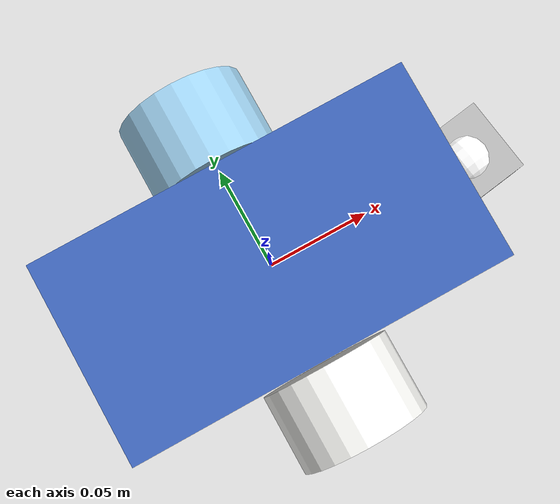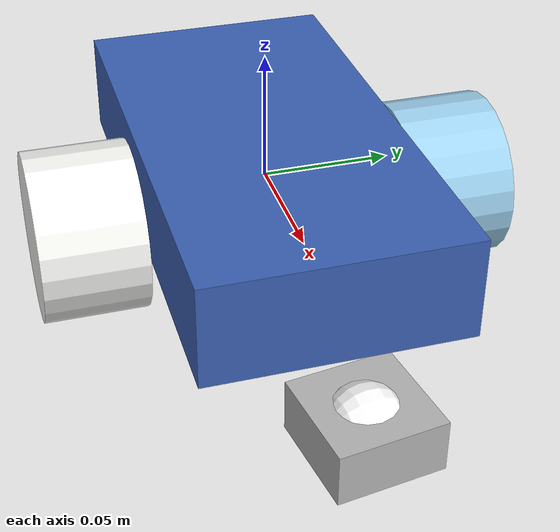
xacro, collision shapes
<?xml version="1.0"?>
<robot name="bot" xmlns:xacro="http://www.ros.org/wiki/xacro">

  <!-- Base robot generated by onshape-to-robot -->
  <xacro:include filename="$(find bot_description)/urdf/bot.urdf"/>

  <!-- Gazebo friction, materials and diff drive plugin -->
  <xacro:include filename="$(find bot_description)/urdf/gazebo.xacro"/>

</robot>

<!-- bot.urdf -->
<!-- Generated using onshape-to-robot -->
<!-- Onshape https://cad.onshape.com/documents/292c33a7f0f854a3cdb21f44/w/3cfe75fb330dfc627e8355b6/e/a29efea0b989aa0e985d95df -->
<robot name="bot">
  <!-- Link chassis -->
  <link name="base_link"/>
  <joint name="base_joint" type="fixed">
    <parent link="base_link"/>
    <child link="chassis"/>
  </joint>
<link name="chassis">
    <inertial>
      <origin xyz="0.0129417 0.000124462 -0.00104202" rpy="0 0 0"/>
      <mass value="0.339243"/>
      <inertia ixx="0.00034847" ixy="1.51262e-07" ixz="9.45548e-05" iyy="0.00106249" iyz="-4.20985e-07" izz="0.0013292"/>
    </inertial>
    <!-- Part spacer -->
    <visual>
      <origin xyz="0.136796 -0.0357567 -0.00100069" rpy="0 -0 0"/>
      <geometry>
        <mesh filename="package://bot_description/meshes/spacer.stl"/>
      </geometry>
      <material name="spacer_material">
        <color rgba="0.231373 0.380392 0.705882 1"/>
      </material>
    </visual>
    <!-- Part mpu6050 -->
    <visual>
      <origin xyz="0.0979786 0.033993 0.0089771" rpy="0 -0 -3.14159"/>
      <geometry>
        <mesh filename="package://bot_description/meshes/mpu6050.stl"/>
      </geometry>
      <material name="mpu6050_material">
        <color rgba="0.921569 0.921569 0.921569 1"/>
      </material>
    </visual>
    <!-- Part tt_motor_3777_v10 -->
    <visual>
      <origin xyz="-0.00036815 0.0387736 -0.0135492" rpy="3.14159 1.5708 0"/>
      <geometry>
        <mesh filename="package://bot_description/meshes/tt_motor_3777_v10.stl"/>
      </geometry>
      <material name="tt_motor_3777_v10_material">
        <color rgba="1 0.976471 0.521569 1"/>
      </material>
    </visual>
    <!-- Part spacer_2 -->
    <visual>
      <origin xyz="0.136796 -0.00575673 -0.00100069" rpy="0 -0 0"/>
      <geometry>
        <mesh filename="package://bot_description/meshes/spacer.stl"/>
      </geometry>
      <material name="spacer_2_material">
        <color rgba="0.231373 0.380392 0.705882 1"/>
      </material>
    </visual>
    <!-- Part tt_motor_3777_v10_2 -->
    <visual>
      <origin xyz="-0.00036815 -0.0388264 -0.0135492" rpy="0 -1.5708 0"/>
      <geometry>
        <mesh filename="package://bot_description/meshes/tt_motor_3777_v10__2.stl"/>
      </geometry>
      <material name="tt_motor_3777_v10_2_material">
        <color rgba="1 0.976471 0.521569 1"/>
      </material>
    </visual>
    <!-- Part tt_motor_3777_v10_3 -->
    <visual>
      <origin xyz="-0.00036815 0.0387736 -0.0135492" rpy="3.14159 1.5708 0"/>
      <geometry>
        <mesh filename="package://bot_description/meshes/tt_motor_3777_v10__3.stl"/>
      </geometry>
      <material name="tt_motor_3777_v10_3_material">
        <color rgba="0.960784 0.960784 0.964706 1"/>
      </material>
    </visual>
    <!-- Part tt_motor_3777_v10_4 -->
    <visual>
      <origin xyz="-0.00036815 0.0387736 -0.0135492" rpy="3.14159 1.5708 0"/>
      <geometry>
        <mesh filename="package://bot_description/meshes/tt_motor_3777_v10__4.stl"/>
      </geometry>
      <material name="tt_motor_3777_v10_4_material">
        <color rgba="0.960784 0.960784 0.964706 1"/>
      </material>
    </visual>
    <!-- Part chassis -->
    <visual>
      <origin xyz="-9.4875e-08 -2.63931e-05 0.000999305" rpy="0 -0 0"/>
      <geometry>
        <mesh filename="package://bot_description/meshes/chassis.stl"/>
      </geometry>
      <material name="chassis_material">
        <color rgba="0.615686 0.811765 0.929412 1"/>
      </material>
    </visual>
    <collision>
      <origin xyz="-9.4875e-08 -2.63931e-05 0.000999305" rpy="0 0 0"/>
      <geometry>
        <box size="0.19 0.10 0.04"/>
      </geometry>
    </collision>
    <!-- Part motor_holders -->
    <visual>
      <origin xyz="0.0429817 0.0500736 -0.0416742" rpy="-0 0 0"/>
      <geometry>
        <mesh filename="package://bot_description/meshes/motor_holders.stl"/>
      </geometry>
      <material name="motor_holders_material">
        <color rgba="0.647059 0.647059 0.647059 1"/>
      </material>
    </visual>
    <!-- Part tt_motor_3777_v10_5 -->
    <visual>
      <origin xyz="-0.00036815 -0.0388264 -0.0135492" rpy="0 -1.5708 0"/>
      <geometry>
        <mesh filename="package://bot_description/meshes/tt_motor_3777_v10__4.stl"/>
      </geometry>
      <material name="tt_motor_3777_v10_5_material">
        <color rgba="0.960784 0.960784 0.964706 1"/>
      </material>
    </visual>
    <!-- Part motor_holders_2 -->
    <visual>
      <origin xyz="0.0429817 -0.0275264 -0.0416742" rpy="0 -0 0"/>
      <geometry>
        <mesh filename="package://bot_description/meshes/motor_holders.stl"/>
      </geometry>
      <material name="motor_holders_2_material">
        <color rgba="0.647059 0.647059 0.647059 1"/>
      </material>
    </visual>
    <!-- Part motor_holders_3 -->
    <visual>
      <origin xyz="0.0429817 0.0294736 -0.0416742" rpy="0 -0 0"/>
      <geometry>
        <mesh filename="package://bot_description/meshes/motor_holders.stl"/>
      </geometry>
      <material name="motor_holders_3_material">
        <color rgba="0.647059 0.647059 0.647059 1"/>
      </material>
    </visual>
    <!-- Part tt_motor_3777_v10_6 -->
    <visual>
      <origin xyz="-0.00036815 -0.0388264 -0.0135492" rpy="0 -1.5708 0"/>
      <geometry>
        <mesh filename="package://bot_description/meshes/tt_motor_3777_v10__5.stl"/>
      </geometry>
      <material name="tt_motor_3777_v10_6_material">
        <color rgba="0.627451 0.627451 0.627451 1"/>
      </material>
    </visual>
    <!-- Part tt_motor_3777_v10_7 -->
    <visual>
      <origin xyz="-0.00036815 -0.0388264 -0.0135492" rpy="0 -1.5708 0"/>
      <geometry>
        <mesh filename="package://bot_description/meshes/tt_motor_3777_v10__3.stl"/>
      </geometry>
      <material name="tt_motor_3777_v10_7_material">
        <color rgba="0.960784 0.960784 0.964706 1"/>
      </material>
    </visual>
    <!-- Part tt_motor_3777_v10_8 -->
    <visual>
      <origin xyz="-0.00036815 0.0387736 -0.0135492" rpy="3.14159 1.5708 0"/>
      <geometry>
        <mesh filename="package://bot_description/meshes/tt_motor_3777_v10__2.stl"/>
      </geometry>
      <material name="tt_motor_3777_v10_8_material">
        <color rgba="1 0.976471 0.521569 1"/>
      </material>
    </visual>
    <!-- Part caster_40mm_swivel_plate_01 -->
    <visual>
      <origin xyz="0.0812499 -2.63931e-05 -0.0322507" rpy="0 -0 -1.5708"/>
      <geometry>
        <mesh filename="package://bot_description/meshes/caster_40mm_swivel_plate_01.stl"/>
      </geometry>
      <material name="caster_40mm_swivel_plate_01_material">
        <color rgba="0.705882 0.705882 0.705882 1"/>
      </material>
    </visual>
    <!-- Part tt_motor_3777_v10_9 -->
    <visual>
      <origin xyz="-0.00036815 0.0387736 -0.0135492" rpy="3.14159 1.5708 0"/>
      <geometry>
        <mesh filename="package://bot_description/meshes/tt_motor_3777_v10__6.stl"/>
      </geometry>
      <material name="tt_motor_3777_v10_9_material">
        <color rgba="0.0980392 0.0980392 0.0980392 1"/>
      </material>
    </visual>
    <!-- Part motor_holders_4 -->
    <visual>
      <origin xyz="0.0429817 -0.0481264 -0.0416742" rpy="-0 -0 0"/>
      <geometry>
        <mesh filename="package://bot_description/meshes/motor_holders.stl"/>
      </geometry>
      <material name="motor_holders_4_material">
        <color rgba="0.647059 0.647059 0.647059 1"/>
      </material>
    </visual>
    <!-- Part tt_motor_3777_v10_10 -->
    <visual>
      <origin xyz="-0.00036815 0.0387736 -0.0135492" rpy="3.14159 1.5708 0"/>
      <geometry>
        <mesh filename="package://bot_description/meshes/tt_motor_3777_v10__7.stl"/>
      </geometry>
      <material name="tt_motor_3777_v10_10_material">
        <color rgba="0.627451 0.627451 0.627451 1"/>
      </material>
    </visual>
    <!-- Part tt_motor_3777_v10_11 -->
    <visual>
      <origin xyz="-0.00036815 0.0387736 -0.0135492" rpy="3.14159 1.5708 0"/>
      <geometry>
        <mesh filename="package://bot_description/meshes/tt_motor_3777_v10__5.stl"/>
      </geometry>
      <material name="tt_motor_3777_v10_11_material">
        <color rgba="0.627451 0.627451 0.627451 1"/>
      </material>
    </visual>
    <!-- Part spacer_3 -->
    <visual>
      <origin xyz="0.112796 -0.0357567 -0.00100069" rpy="0 -0 0"/>
      <geometry>
        <mesh filename="package://bot_description/meshes/spacer.stl"/>
      </geometry>
      <material name="spacer_3_material">
        <color rgba="0.231373 0.380392 0.705882 1"/>
      </material>
    </visual>
    <!-- Part tt_motor_3777_v10_12 -->
    <visual>
      <origin xyz="-0.00036815 -0.0388264 -0.0135492" rpy="0 -1.5708 0"/>
      <geometry>
        <mesh filename="package://bot_description/meshes/tt_motor_3777_v10.stl"/>
      </geometry>
      <material name="tt_motor_3777_v10_12_material">
        <color rgba="1 0.976471 0.521569 1"/>
      </material>
    </visual>
    <!-- Part tt_motor_3777_v10_13 -->
    <visual>
      <origin xyz="-0.00036815 -0.0388264 -0.0135492" rpy="0 -1.5708 0"/>
      <geometry>
        <mesh filename="package://bot_description/meshes/tt_motor_3777_v10__7.stl"/>
      </geometry>
      <material name="tt_motor_3777_v10_13_material">
        <color rgba="0.627451 0.627451 0.627451 1"/>
      </material>
    </visual>
    <!-- Part tt_motor_3777_v10_14 -->
    <visual>
      <origin xyz="-0.00036815 -0.0388264 -0.0135492" rpy="0 -1.5708 0"/>
      <geometry>
        <mesh filename="package://bot_description/meshes/tt_motor_3777_v10__6.stl"/>
      </geometry>
      <material name="tt_motor_3777_v10_14_material">
        <color rgba="0.0980392 0.0980392 0.0980392 1"/>
      </material>
    </visual>
    <!-- Part spacer_4 -->
    <visual>
      <origin xyz="0.112796 -0.00575673 -0.00100069" rpy="0 -0 0"/>
      <geometry>
        <mesh filename="package://bot_description/meshes/spacer.stl"/>
      </geometry>
      <material name="spacer_4_material">
        <color rgba="0.231373 0.380392 0.705882 1"/>
      </material>
    </visual>
    <!-- Part main_half_size_board -->
    <visual>
      <origin xyz="0.11075 0.0356236 0.000999305" rpy="1.5708 0 -1.5708"/>
      <geometry>
        <mesh filename="package://bot_description/meshes/main_half_size_board.stl"/>
      </geometry>
      <material name="main_half_size_board_material">
        <color rgba="1 1 1 1"/>
      </material>
    </visual>
    <!-- Part half_size_side_rail -->
    <visual>
      <origin xyz="0.0282799 -0.0432849 0.000635827" rpy="0 0 0"/>
      <geometry>
        <mesh filename="package://bot_description/meshes/half_size_side_rail.stl"/>
      </geometry>
      <material name="half_size_side_rail_material">
        <color rgba="1 1 1 1"/>
      </material>
    </visual>
    <!-- Part half_size_side_rail_2 -->
    <visual>
      <origin xyz="0.0282499 0.0356236 0.000999305" rpy="0 0 0"/>
      <geometry>
        <mesh filename="package://bot_description/meshes/half_size_side_rail.stl"/>
      </geometry>
      <material name="half_size_side_rail_2_material">
        <color rgba="1 1 1 1"/>
      </material>
    </visual>
    <!-- Part main_half_size_board_2 -->
    <visual>
      <origin xyz="0.110804 0.000622607 0.000989475" rpy="1.5708 0 -1.5708"/>
      <geometry>
        <mesh filename="package://bot_description/meshes/main_half_size_board.stl"/>
      </geometry>
      <material name="main_half_size_board_2_material">
        <color rgba="1 1 1 1"/>
      </material>
    </visual>
    <!-- Part remache_v1_0 -->
    <visual>
      <origin xyz="-0.0441788 -0.0360268 0.0110493" rpy="-0.6866 -0 1.5708"/>
      <geometry>
        <mesh filename="package://bot_description/meshes/remache_v1_0.stl"/>
      </geometry>
      <material name="remache_v1_0_material">
        <color rgba="0.8 0.666667 0.321569 1"/>
      </material>
    </visual>
    <!-- Part remache_v1_0_2 -->
    <visual>
      <origin xyz="-0.0640288 -0.0360268 0.0110493" rpy="-0.6866 -0 1.5708"/>
      <geometry>
        <mesh filename="package://bot_description/meshes/remache_v1_0.stl"/>
      </geometry>
      <material name="remache_v1_0_2_material">
        <color rgba="0.8 0.666667 0.321569 1"/>
      </material>
    </visual>
    <!-- Part contacto_plano_v1_0 -->
    <visual>
      <origin xyz="-0.0441788 -0.0360768 0.0110493" rpy="1.5708 -0.567108 -3.14159"/>
      <geometry>
        <mesh filename="package://bot_description/meshes/contacto_plano_v1_0.stl"/>
      </geometry>
      <material name="contacto_plano_v1_0_material">
        <color rgba="0.741176 0.776471 0.8 1"/>
      </material>
    </visual>
    <!-- Part porta_baterias_2x18650 -->
    <visual>
      <origin xyz="-0.0541038 2.31881e-05 0.000599305" rpy="0 -0 -1.5708"/>
      <geometry>
        <mesh filename="package://bot_description/meshes/porta_baterias_2x18650.stl"/>
      </geometry>
      <material name="porta_baterias_2x18650_material">
        <color rgba="0.2 0.2 0.2 1"/>
      </material>
    </visual>
    <!-- Part contacto_helice_v2_0 -->
    <visual>
      <origin xyz="-0.0640288 -0.0357268 0.0110493" rpy="-1.5708 -0.391796 0"/>
      <geometry>
        <mesh filename="package://bot_description/meshes/contacto_helice_v2_0.stl"/>
      </geometry>
      <material name="contacto_helice_v2_0_material">
        <color rgba="0.741176 0.776471 0.8 1"/>
      </material>
    </visual>
    <!-- Part contacto_plano_v1_0_2 -->
    <visual>
      <origin xyz="-0.0640288 0.0361232 0.0110493" rpy="-1.5708 -0.611892 -3.14159"/>
      <geometry>
        <mesh filename="package://bot_description/meshes/contacto_plano_v1_0.stl"/>
      </geometry>
      <material name="contacto_plano_v1_0_2_material">
        <color rgba="0.741176 0.776471 0.8 1"/>
      </material>
    </visual>
    <!-- Part bateria_18650 -->
    <visual>
      <origin xyz="-0.0640288 -0.0301768 0.0110493" rpy="-1.5708 0.448272 -0"/>
      <geometry>
        <mesh filename="package://bot_description/meshes/bateria_18650.stl"/>
      </geometry>
      <material name="bateria_18650_material">
        <color rgba="0.392157 0.6 0.392157 1"/>
      </material>
    </visual>
    <!-- Part remache_v1_0_3 -->
    <visual>
      <origin xyz="-0.0640288 0.0360732 0.0110493" rpy="-0.6866 0 1.5708"/>
      <geometry>
        <mesh filename="package://bot_description/meshes/remache_v1_0.stl"/>
      </geometry>
      <material name="remache_v1_0_3_material">
        <color rgba="0.8 0.666667 0.321569 1"/>
      </material>
    </visual>
    <!-- Part bateria_18650_2 -->
    <visual>
      <origin xyz="-0.0441788 0.0302232 0.0110493" rpy="-1.5708 -1.11651 -3.14159"/>
      <geometry>
        <mesh filename="package://bot_description/meshes/bateria_18650.stl"/>
      </geometry>
      <material name="bateria_18650_2_material">
        <color rgba="0.392157 0.6 0.392157 1"/>
      </material>
    </visual>
    <!-- Part contacto_helice_v2_0_2 -->
    <visual>
      <origin xyz="-0.0441788 0.0357732 0.0110493" rpy="1.5708 1.5708 0"/>
      <geometry>
        <mesh filename="package://bot_description/meshes/contacto_helice_v2_0.stl"/>
      </geometry>
      <material name="contacto_helice_v2_0_2_material">
        <color rgba="0.741176 0.776471 0.8 1"/>
      </material>
    </visual>
    <!-- Part remache_v1_0_4 -->
    <visual>
      <origin xyz="-0.0441788 0.0360732 0.0110493" rpy="-0.6866 -0 1.5708"/>
      <geometry>
        <mesh filename="package://bot_description/meshes/remache_v1_0.stl"/>
      </geometry>
      <material name="remache_v1_0_4_material">
        <color rgba="0.8 0.666667 0.321569 1"/>
      </material>
    </visual>
  </link>
  <!-- Frame imu_link (dummy link + fixed joint) -->
  <link name="imu_link">
    <origin xyz="0 0 0" rpy="0 -0 0"/>
    <inertial>
      <origin xyz="0 0 0" rpy="0 0 0"/>
      <mass value="1e-9"/>
      <inertia ixx="0" ixy="0" ixz="0" iyy="0" iyz="0" izz="0"/>
    </inertial>
  </link>
  <joint name="imu_link_frame" type="fixed">
    <origin xyz="0.0979786 0.033993 0.0089771" rpy="0 -0 0"/>
    <parent link="chassis"/>
    <child link="imu_link"/>
    <axis xyz="0 0 0"/>
  </joint>
  <!-- Link wheel -->
  <link name="wheel">
    <inertial>
      <origin xyz="0.000233615 -1.15321e-07 -0.0320156" rpy="0 0 0"/>
      <mass value="0.0449149"/>
      <inertia ixx="2.33428e-05" ixy="-7.5e-11" ixz="2.4132e-08" iyy="2.3342e-05" iyz="-4.4e-11" izz="3.25125e-05"/>
    </inertial>
    <!-- Part tt_motor_3777_v10_15 -->
    <visual>
      <origin xyz="0 -0 0" rpy="1.5708 -0 0"/>
      <geometry>
        <mesh filename="package://bot_description/meshes/tt_motor_3777_v10__8.stl"/>
      </geometry>
      <material name="tt_motor_3777_v10_15_material">
        <color rgba="0.964706 0.964706 0.952941 1"/>
      </material>
    </visual>
    <!-- Part wheel -->
    <visual>
      <origin xyz="0.00025 -0 -0.0484" rpy="1.5708 0 -1.5708"/>
      <geometry>
        <mesh filename="package://bot_description/meshes/wheel.stl"/>
      </geometry>
      <material name="wheel_material">
        <color rgba="0.615686 0.811765 0.929412 1"/>
      </material>
    </visual>
    <collision>
      <origin xyz="0.00025 -0 -0.0334" rpy="0 0 1.5708"/>
      <geometry>
        <cylinder radius="0.033" length="0.04"/>
      </geometry>
    </collision>
  </link>
  <!-- Joint from chassis to wheel -->
  <joint name="right_wheel" type="continuous">
    <origin xyz="-0.00036815 -0.0387764 -0.0135492" rpy="1.5708 -0.995712 -3.14159"/>
    <parent link="chassis"/>
    <child link="wheel"/>
    <axis xyz="0 0 1"/>
    <limit effort="10" velocity="10"/>
  </joint>
  <!-- Link wheel_2 -->
  <link name="wheel_2">
    <inertial>
      <origin xyz="-0.000233615 -1.15321e-07 0.0320156" rpy="0 0 0"/>
      <mass value="0.0449149"/>
      <inertia ixx="2.33428e-05" ixy="7.5e-11" ixz="2.4132e-08" iyy="2.3342e-05" iyz="4.4e-11" izz="3.25125e-05"/>
    </inertial>
    <!-- Part wheel_2 -->
    <visual>
      <origin xyz="-0.00025 -0 0.0484" rpy="-1.5708 -0 -1.5708"/>
      <geometry>
        <mesh filename="package://bot_description/meshes/wheel.stl"/>
      </geometry>
      <material name="wheel_2_material">
        <color rgba="0.615686 0.811765 0.929412 1"/>
      </material>
    </visual>
    <collision>
      <origin xyz="-0.00025 -0 0.0334" rpy="0 0 1.5708"/>
      <geometry>
        <cylinder radius="0.033" length="0.04"/>
      </geometry>
    </collision>
    <!-- Part tt_motor_3777_v10_16 -->
    <visual>
      <origin xyz="0 0 0" rpy="1.5708 -0 0"/>
      <geometry>
        <mesh filename="package://bot_description/meshes/tt_motor_3777_v10__8.stl"/>
      </geometry>
      <material name="tt_motor_3777_v10_16_material">
        <color rgba="0.964706 0.964706 0.952941 1"/>
      </material>
    </visual>
  </link>
  <!-- Joint from chassis to wheel_2 -->
  <joint name="left_wheel" type="continuous">
    <origin xyz="-0.00036815 0.0387236 -0.0135492" rpy="-1.5708 0 0"/>
    <parent link="chassis"/>
    <child link="wheel_2"/>
    <axis xyz="0 0 1"/>
    <limit effort="10" velocity="10"/>
  </joint>
  <!-- Link caster_40mm_wheel_support_01 -->
  <link name="caster_40mm_wheel_support_01">
    <inertial>
      <origin xyz="-0.000469757 -0.00666336 -0.0085057" rpy="0 0 0"/>
      <mass value="0.0177347"/>
      <inertia ixx="2.35477e-06" ixy="-7.3611e-08" ixz="-9.5747e-08" iyy="2.30168e-06" iyz="-7.22818e-07" izz="2.54646e-06"/>
    </inertial>
    <!-- Part caster_40mm_wheel_support_01 -->
    <visual>
      <origin xyz="-0 -0.0155 -0.02" rpy="-0 -0 0"/>
      <geometry>
        <mesh filename="package://bot_description/meshes/caster_40mm_wheel_support_01.stl"/>
      </geometry>
      <material name="caster_40mm_wheel_support_01_material">
        <color rgba="0.705882 0.705882 0.705882 1"/>
      </material>
    </visual>
    <collision>
      <origin xyz="-0 -0.0155 -0.02" rpy="0 0 0"/>
      <geometry>
        <box size="0.04 0.04 0.02"/>
      </geometry>
    </collision>
  </link>
  <!-- Link caster_40mm_wheel_30mm_01 -->
  <link name="caster_40mm_wheel_30mm_01">
    <inertial>
      <origin xyz="0 0 0" rpy="0 0 0"/>
      <mass value="0.007"/>
      <inertia ixx="5.2943e-07" ixy="-0" ixz="-0" iyy="5.2943e-07" iyz="-0" izz="8.93552e-07"/>
    </inertial>
    <!-- Part caster_40mm_wheel_30mm_01 -->
    <visual>
      <origin xyz="0 0 0" rpy="-1.5708 -1.5708 0"/>
      <geometry>
        <mesh filename="package://bot_description/meshes/caster_40mm_wheel_30mm_01.stl"/>
      </geometry>
      <material name="caster_40mm_wheel_30mm_01_material">
        <color rgba="1 1 1 1"/>
      </material>
    </visual>
    <collision>
      <origin xyz="0 0 0" rpy="0 0 0"/>
      <geometry>
        <sphere radius="0.015"/>
      </geometry>
    </collision>
  </link>
  <!-- Joint from caster_40mm_wheel_support_01 to caster_40mm_wheel_30mm_01 -->
  <joint name="caster_wheel" type="continuous">
    <origin xyz="-0 -0.0155 -0.02" rpy="1.5708 -0 1.5708"/>
    <parent link="caster_40mm_wheel_support_01"/>
    <child link="caster_40mm_wheel_30mm_01"/>
    <axis xyz="0 0 1"/>
    <limit effort="10" velocity="10"/>
  </joint>
  <!-- Joint from chassis to caster_40mm_wheel_support_01 -->
  <joint name="caster_swivel" type="revolute">
    <origin xyz="0.0967499 -2.63931e-05 -0.0129007" rpy="-0 0 1.71597"/>
    <parent link="chassis"/>
    <child link="caster_40mm_wheel_support_01"/>
    <axis xyz="0 0 1"/>
    <dynamics damping="0.01" friction="0.002"/>
    <limit effort="10" velocity="10" lower="-3.141592653589793" upper="3.141592653589793"/>
  </joint>
</robot>
